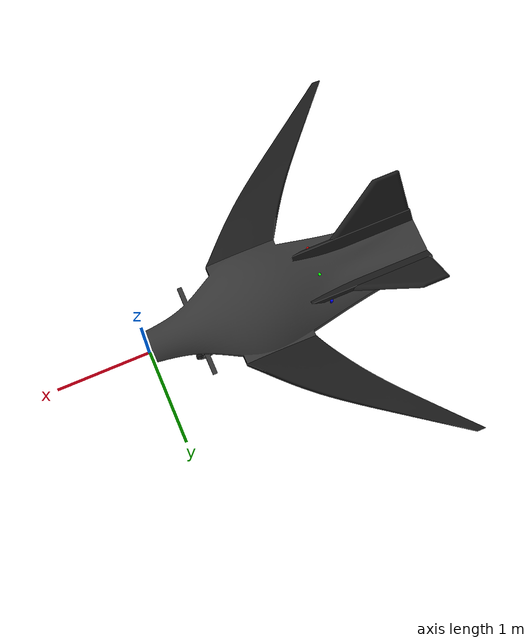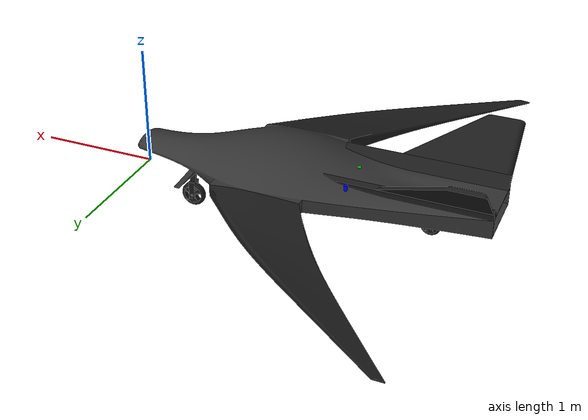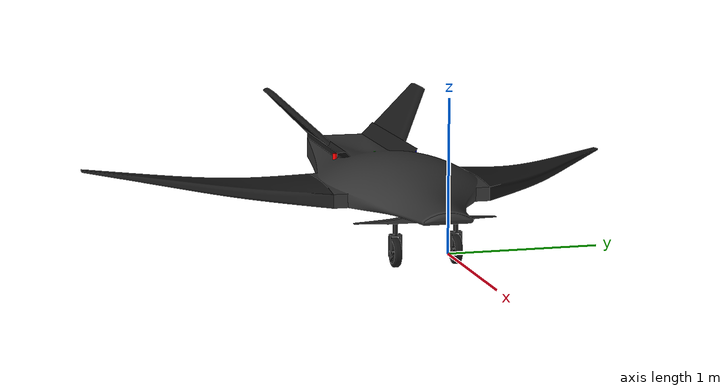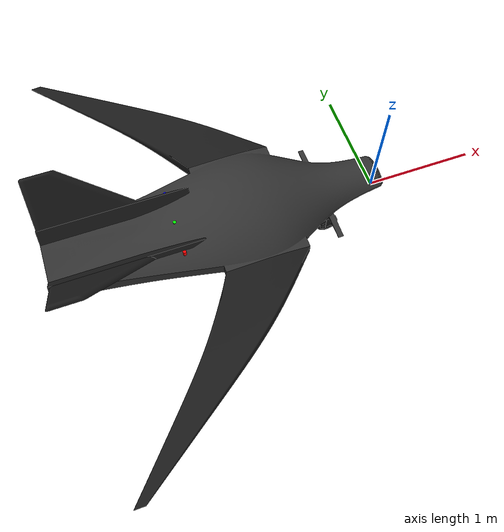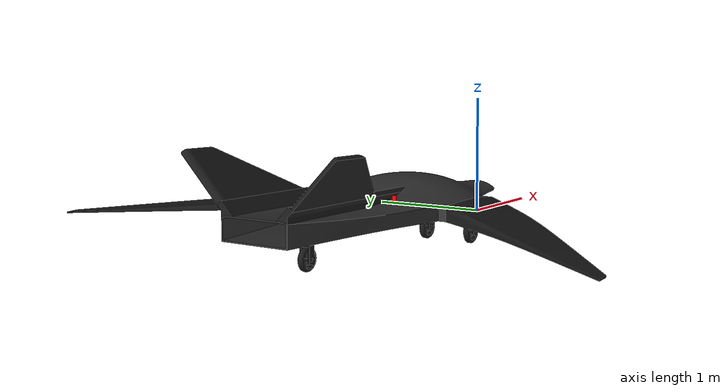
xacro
<?xml version="1.0"?>
<robot name="marid" xmlns:xacro="http://ros.org/wiki/xacro">

  <xacro:arg name="is_ignition" default="true"/>

  <!-- Include Gazebo parameters-->
  <xacro:include filename="$(find marid_description)/urdf/marid_new_gazebo.xacro"/>

  <!-- ROS2 Control Library-->
  <xacro:include filename="$(find marid_description)/urdf/marid_ros2_control.xacro"/>

  <!-- Joint origins at the desired rotation axis location; inertial origin = CoM in link frame (computed from joint origin) -->
  <xacro:property name="left_wing_inertial" value="-0.50031399 0.61004875 -0.02410637"/>
  <xacro:property name="right_wing_inertial" value="-0.50031399 -0.61004875 -0.02410637"/>
  <!-- Tail V-surfaces: inertial origin = CoM in tail link frame.-->
  <xacro:property name="tail_left_inertial" value="-0.12167064 0.13072223 0.12984906"/>
  <xacro:property name="tail_right_inertial" value="-0.12167064 -0.13072223 0.12984906"/>

  <link name="base_link_front">
    <inertial>
      <mass value="84.735"/>
      <origin xyz="-1.876 0 0.306" rpy="0 0 0"/>  <!-- COG already placed correctly -->
      <inertia ixx="6.643" ixy="0.013" ixz="-0.151" iyy="49.838" iyz="0.001" izz="55.184"/>
    </inertial>
    <visual>
      <origin xyz="0 0 0" rpy="0 0 0"/>
      <geometry>
        <mesh filename="package://marid_description/meshes_2/base_link_front.stl"/>
      </geometry>
      <material name="base_link_front_dark_grey">
        <color rgba="0.2 0.2 0.2 1.0"/>
      </material>
    </visual>
    <collision>
      <origin xyz="0 0 0" rpy="0 0 0"/>
      <geometry>
        <mesh filename="package://marid_description/meshes_2/base_link_front.stl"/>
      </geometry>
    </collision>
  </link>

  <!--Landing Gears-->
  <link name="left_front_wheel_arm">
    <inertial>
      <mass value="0.392"/>
      <origin xyz="-0.525 0.20786886 -0.00022077" rpy="0 0 0"/>
      <inertia ixx="0.002" ixy="0.0" ixz="0.0" iyy="0.002" iyz="0.0" izz="3.794e-4"/>
    </inertial>
    <visual>
      <origin xyz="0 0 0" rpy="0 0 0"/>
      <geometry>
        <mesh filename="package://marid_description/meshes_2/front_left_arm.stl"/>
      </geometry>
      <material name="arm_black">
        <color rgba="0.1 0.1 0.1 1.0"/>
      </material>
    </visual>
    <collision>
      <origin xyz="0 0 0" rpy="0 0 0"/>
      <geometry>
        <mesh filename="package://marid_description/meshes_2/front_left_arm.stl"/>
      </geometry>
    </collision>
  </link>

  <joint name="left_arm_joint" type="fixed">
    <parent link="base_link_front"/>
    <child link="left_front_wheel_arm"/>
    <origin xyz="0 0 0" rpy="0 0 0"/>  <!-- Top of left arm from CAD (min dist), m; Z neg = below origin -->
  </joint>

  <link name="right_front_wheel_arm">
    <inertial>
      <mass value="0.392"/>
      <origin xyz="-0.525 -0.20786886 -0.00022077" rpy="0 0 0"/>
      <inertia ixx="0.002" ixy="0.0" ixz="0.0" iyy="0.002" iyz="0.0" izz="3.794e-4"/>
    </inertial>
    <visual>
      <origin xyz="0 0 0" rpy="0 0 0"/>
      <geometry>
        <mesh filename="package://marid_description/meshes_2/front_right_arm.stl"/>
      </geometry>
      <material name="arm_black">
        <color rgba="0.1 0.1 0.1 1.0"/>
      </material>
    </visual>
    <collision>
      <origin xyz="0 0 0" rpy="0 0 0"/>
      <geometry>
        <mesh filename="package://marid_description/meshes_2/front_right_arm.stl"/>
      </geometry>
    </collision>
  </link>

  <joint name="right_arm_joint" type="fixed">
    <parent link="base_link_front"/>
    <child link="right_front_wheel_arm"/>
    <origin xyz="0 0 0" rpy="0 0 0"/>  <!-- Top of right arm from CAD (min dist), m; Z neg = below origin -->
  </joint>

  <link name="left_front_wheel">
    <inertial>
      <mass value="0.934"/>
      <origin xyz="0 0 0" rpy="0 0 0"/>
      <inertia ixx="0.0036" ixy="0" ixz="0" iyy="0.007" iyz="0" izz="0.0036"/>
    </inertial>
    <visual>
      <origin xyz="0.525 -0.20786886 0.09000082" rpy="0 0 0"/>
      <geometry>
        <mesh filename="package://marid_description/meshes_2/front_left_tire.stl"/>
      </geometry>
      <material name="tire_black">
        <color rgba="0.1 0.1 0.1 1.0"/>
      </material>
    </visual>
    <collision>
      <origin xyz="0 0 0" rpy="1.5708 0 0"/>
      <geometry>
        <cylinder radius="0.089" length="0.05"/>
      </geometry>
    </collision>
  </link>

  <joint name="left_front_wheel_joint" type="continuous">
    <parent link="left_front_wheel_arm"/>
    <child link="left_front_wheel"/>
    <origin xyz="-0.525 0.20786886 -0.09000082" rpy="0 0 0"/>
    <axis xyz="0 1 0"/>  <!-- Wheel rotation around own axle (parallel to world Y) -->
    <dynamics damping="0.01" friction="0.0"/>
  </joint>

  <link name="right_front_wheel">
    <inertial>
      <mass value="0.934"/>
      <origin xyz="0 0 0" rpy="0 0 0"/>
      <inertia ixx="0.0036" ixy="0" ixz="0" iyy="0.007" iyz="0" izz="0.0036"/>
    </inertial>
    <visual>
      <origin xyz="0.525 0.20786886 0.09000082" rpy="0 0 0"/>
      <geometry>
        <mesh filename="package://marid_description/meshes_2/front_right_tire.stl"/>
      </geometry>
      <material name="tire_black">
        <color rgba="0.1 0.1 0.1 1.0"/>
      </material>
    </visual>
    <collision>
      <origin xyz="0 0 0" rpy="1.5708 0 0"/>
      <geometry>
        <cylinder radius="0.089" length="0.05"/>
      </geometry>
    </collision>
  </link>

  <joint name="right_front_wheel_joint" type="continuous">
    <parent link="right_front_wheel_arm"/>
    <child link="right_front_wheel"/>
    <origin xyz="-0.525 -0.20786886 -0.09000082" rpy="0 0 0"/>
    <axis xyz="0 1 0"/>  <!-- Wheel rotation around own axle (parallel to world Y) -->
    <dynamics damping="0.01" friction="0.0"/>
  </joint>

  <link name="rear_wheel_arm">
    <inertial>
      <mass value="0.362"/>
      <origin xyz="-2.47499035 0 0.05355912" rpy="0 0 0"/>
      <inertia ixx="0.001" ixy="0.0" ixz="-3.417e-7" iyy="0.001" iyz="0.0" izz="3.242e-4"/>
    </inertial>
    <visual>
      <origin xyz="0 0 0" rpy="0 0 0"/>
      <geometry>
        <mesh filename="package://marid_description/meshes_2/rear_arm.stl"/>
      </geometry>
      <material name="arm_black">
        <color rgba="0.1 0.1 0.1 1.0"/>
      </material>
    </visual>
    <collision>
      <origin xyz="0 0 0" rpy="0 0 0"/>
      <geometry>
        <mesh filename="package://marid_description/meshes_2/rear_arm.stl"/>
      </geometry>
    </collision>
  </link>

  <joint name="rear_arm_joint" type="fixed">
    <parent link="base_link_front"/>
    <child link="rear_wheel_arm"/>
    <origin xyz="0 0 0" rpy="0 0 0"/>  <!-- Rear arm -->
  </joint>

  <link name="rear_wheel">
    <inertial>
      <mass value="0.573"/>
      <origin xyz="0 0 0" rpy="0 0 0"/>
      <inertia ixx="0.0016" ixy="0" ixz="0" iyy="0.003" iyz="0" izz="0.0016"/>
    </inertial>
    <visual>
      <origin xyz="2.475 0 0.02500082" rpy="0 0 0"/>
      <geometry>
        <mesh filename="package://marid_description/meshes_2/rear_tire.stl"/>
      </geometry>
      <material name="tire_black">
        <color rgba="0.1 0.1 0.1 1.0"/>
      </material>
    </visual>
    <collision>
      <origin xyz="0 0 0" rpy="1.5708 0 0"/>
      <geometry>
        <cylinder radius="0.08" length="0.05"/>
      </geometry>
    </collision>
  </link>

  <joint name="rear_wheel_joint" type="continuous">
    <parent link="rear_wheel_arm"/>
    <child link="rear_wheel"/>
    <origin xyz="-2.475 0 -0.02500082" rpy="0 0 0"/>
    <axis xyz="0 1 0"/>  <!-- Wheel rotation around own axle (parallel to world Y) -->
    <dynamics damping="0.01" friction="0.0"/>
  </joint>

  <link name="main_tail">
    <inertial>
      <mass value="17.551"/>
      <origin xyz="-2.4135434 0 0.34612528" rpy="0 0 0"/>
      <inertia ixx="1.073" ixy="1.867e-6" ixz="-0.023" iyy="2.113" iyz="-2.847e-7" izz="3.168"/>
    </inertial>
    <visual>
      <origin xyz="0 0 0" rpy="0 0 0"/>
      <geometry>
        <mesh filename="package://marid_description/meshes_2/main_tail.stl"/>
      </geometry>
      <material name="main_tail_black">
        <color rgba="0.1 0.1 0.1 1.0"/>
      </material>
    </visual>
    <collision>
      <origin xyz="0 0 0" rpy="0 0 0"/>
      <geometry>
        <mesh filename="package://marid_description/meshes_2/main_tail.stl"/>
      </geometry>
    </collision>
  </link>

  <joint name="main_tail_joint" type="fixed">
    <parent link="base_link_front"/>
    <child link="main_tail"/>
    <origin xyz="0 0 0" rpy="0 0 0"/>
  </joint>

  <link name="left_wing">
    <inertial>
      <origin xyz="${left_wing_inertial}" rpy="0 0 0"/>
      <mass value="3.662"/>
      <inertia ixx="0.55" ixy="0.54" ixz="-0.022" iyy="0.662" iyz="0.021" izz="1.202"/>
    </inertial>
    <visual>
      <origin xyz="1.225 -0.5 -0.208" rpy="0 0 0"/>
      <geometry>
        <mesh filename="package://marid_description/meshes_2/left_wing.stl"/>
      </geometry>
      <material name="wing_black">
        <color rgba="0.1 0.1 0.1 1.0"/>
      </material>
    </visual>
    <collision>
      <origin xyz="1.225 -0.5 -0.208" rpy="0 0 0"/>
      <geometry>
        <mesh filename="package://marid_description/meshes_2/left_wing.stl"/>
      </geometry>
    </collision>
  </link>

  <joint name="left_wing_joint" type="revolute">
    <parent link="base_link_front"/>
    <child link="left_wing"/>
    <origin xyz="-1.225 0.5 0.208" rpy="0 0 0"/>
    <axis xyz="0 1 0"/>
    <dynamics damping="2.5" friction="10.0"/>  <!-- Lower friction; wing mass/inertia + aero carry the load -->
    <sensor name="left_wing_ft" type="force_torque">
      <update_rate>1</update_rate>
      <force_torque>
        <frame>child</frame>
        <measure_direction>child_to_parent</measure_direction>
      </force_torque>
      <topic>/marid/left_wing/wrench</topic>
    </sensor>
    <limit lower="-0.15" upper="0.15" effort="700.0" velocity="1.0"/>  <!-- ±30 degrees; servo-like torque limit -->
  </joint>

  <link name="right_wing">
    <inertial>
      <origin xyz="${right_wing_inertial}"  rpy="0 0 0"/>
      <mass value="3.662"/>
      <inertia ixx="0.55" ixy="-0.54" ixz="-0.022" iyy="0.662" iyz="-0.021" izz="1.202"/>
    </inertial>
    <visual>
      <origin xyz="1.225 0.5 -0.208" rpy="0 0 0"/>
      <geometry>
        <mesh filename="package://marid_description/meshes_2/right_wing.stl"/>
      </geometry>
      <material name="wing_black">
        <color rgba="0.1 0.1 0.1 1.0"/>
      </material>
    </visual>
    <collision>
      <origin xyz="1.225 0.5 -0.208" rpy="0 0 0"/>
      <geometry>
        <mesh filename="package://marid_description/meshes_2/right_wing.stl"/>
      </geometry>
    </collision>
  </link>

  <joint name="right_wing_joint" type="revolute">
    <parent link="base_link_front"/>
    <child link="right_wing"/>
    <origin xyz="-1.225 -0.5 0.208" rpy="0 0 0"/>
    <axis xyz="0 1 0"/>
    <dynamics damping="2.5" friction="10.0"/>  <!-- Lower friction; wing mass/inertia + aero carry the load -->
    <sensor name="right_wing_ft" type="force_torque">
      <update_rate>1</update_rate>
      <force_torque>
        <frame>child</frame>
        <measure_direction>child_to_parent</measure_direction>
      </force_torque>
      <topic>/marid/right_wing/wrench</topic>
    </sensor>
    <limit lower="-0.15" upper="0.15" effort="700.0" velocity="1.0"/>  <!-- ±30 degrees; servo-like torque limit -->
  </joint>

  <link name="tail_left">
    <inertial>
      <origin xyz="${tail_left_inertial}" rpy="0 0 1.57079632679"/>
      <mass value="0.1664684"/>
      <inertia ixx="0.00053436" ixy="0.0" ixz="-0.0003467078" iyy="0.000704515" iyz="0.0" izz="0.0006567504"/>
    </inertial>
    <visual>
      <origin xyz="2.559906840 -0.28129418 -0.38425379" rpy="0 0 0"/>
      <geometry>
        <mesh filename="package://marid_description/meshes_2/tail_left.stl"/>
      </geometry>
      <material name="tail_wing_black">
        <color rgba="0.1 0.1 0.1 1.0"/>
      </material>
    </visual>
    <collision>
      <origin xyz="2.559906840 -0.28129418 -0.38425379" rpy="0 0 0"/>
      <geometry>
        <mesh filename="package://marid_description/meshes_2/tail_left.stl"/>
      </geometry>
    </collision>
  </link>

  <joint name="tail_left_joint" type="revolute">
    <parent link="main_tail"/>
    <child link="tail_left"/>
    <origin xyz="-2.559906840 0.28129418 0.38425379" rpy="0 0 0"/>
    <axis xyz="0 0.7071 0.7071"/>
    <dynamics damping="2.5" friction="10.0"/>  <!-- Lower friction; tail mass/inertia + aero carry the load -->
    <sensor name="left_tail_ft" type="force_torque">
      <update_rate>1</update_rate>
      <force_torque>
        <frame>child</frame>
        <measure_direction>child_to_parent</measure_direction>
      </force_torque>
      <topic>/marid/left_tail/wrench</topic>
    </sensor>
    <limit lower="-0.35" upper="0.35" effort="500.0" velocity="1.0"/>  <!-- ±20 degrees; servo-like torque limit -->
  </joint>

  <link name="tail_right">
    <inertial>
      <origin xyz="${tail_right_inertial}" rpy="0 0 1.57079632679"/>
      <mass value="0.1664684"/>
      <inertia ixx="0.00053436" ixy="0.0" ixz="0.0003467078" iyy="0.000704515" iyz="0.0" izz="0.0006567504"/>
    </inertial>
    <visual>
      <origin xyz="2.559906840 0.28129418 -0.38425379" rpy="0 0 0"/>
      <geometry>
        <mesh filename="package://marid_description/meshes_2/tail_right.stl"/>
      </geometry>
      <material name="tail_wing_black">
        <color rgba="0.1 0.1 0.1 1.0"/>
      </material>
    </visual>
    <collision>
      <origin xyz="2.559906840 0.28129418 -0.38425379" rpy="0 0 0"/>
      <geometry>
        <mesh filename="package://marid_description/meshes_2/tail_right.stl"/>
      </geometry>
    </collision>
  </link>

  <joint name="tail_right_joint" type="revolute">
    <parent link="main_tail"/>
    <child link="tail_right"/>
    <origin xyz="-2.559906840 -0.28129418 0.38425379" rpy="0 0 0"/>
    <axis xyz="0 0.7071 -0.7071"/>
    <dynamics damping="2.5" friction="10.0"/>  <!-- Lower friction; tail mass/inertia + aero carry the load -->
    <sensor name="right_tail_ft" type="force_torque">
      <update_rate>1</update_rate>
      <force_torque>
        <frame>child</frame>
        <measure_direction>child_to_parent</measure_direction>
      </force_torque>
      <topic>/marid/right_tail/wrench</topic>
    </sensor>
    <limit lower="-0.35" upper="0.35" effort="500.0" velocity="1.0"/>  <!-- ±20 degrees; servo-like torque limit -->
  </joint>

  <link name="imu_link">
    <inertial>
      <origin xyz="-0.00552433659106688 0.000168210391520346 0.000514000497342681" rpy="0 0 0" />
      <mass value="0.000528415362211671" />
      <inertia ixx="1.46176048428261E-08" ixy="1.40015117949421E-10" ixz="-1.99633872937403E-12"
               iyy="8.59662482954888E-09" iyz="7.52375112767959E-12"
               izz="2.30279421279312E-08" />
    </inertial>
    <visual>
        <origin xyz="-1.5 0 0.15" rpy="0 0 0"/>
        <geometry><cylinder length="0.01" radius="0.01"/></geometry>
    </visual>
    <collision>
        <origin xyz="-1.5 0 0.15" rpy="0 0 0"/>
        <geometry><cylinder length="0.01" radius="0.01"/></geometry>
    </collision>
  </link>

  <joint name="imu_joint" type="fixed">
    <origin xyz="0 0 0" rpy="0 0 0" />
    <parent link="base_link_front" />
    <child link="imu_link" />
  </joint>

  <link name="gps_link">
    <inertial>
      <mass value="0.01"/>
      <origin xyz="-1.5 0 0.18"/>
      <inertia ixx="1e-6" iyy="1e-6" izz="1e-6" ixy="0" ixz="0" iyz="0"/>
    </inertial>
    <visual>
      <origin xyz="-1.5 0 0.18" rpy="0 0 0"/>
      <geometry>
        <box size="0.02 0.02 0.01"/>
      </geometry>
      <material name="gps_green">
        <color rgba="0.0 1.0 0.0 1.0"/>
      </material>
      </visual>
  </link>

  <joint name="gps_joint" type="fixed">
    <parent link="base_link_front"/>
    <child link="gps_link"/>
    <origin xyz="0 0 0" rpy="0 0 0"/>  <!-- GPS at base origin (tune position for fuselage top) -->
  </joint>

  <!-- LIDAR Sensor Link -->
  <link name="lidar_link">
    <inertial>
      <mass value="0.1"/>  <!-- Typical LIDAR weight -->
      <origin xyz="-1.3 0 0.15"/>
      <inertia ixx="1e-5" iyy="1e-5" izz="1e-5" ixy="0" ixz="0" iyz="0"/>
    </inertial>
    <visual>
      <origin xyz="-1.3 0 0.15" rpy="0 0 0"/>
      <geometry>
        <cylinder length="0.05" radius="0.03"/>  <!-- Small cylinder to represent LIDAR -->
      </geometry>
      <material name="lidar_red">
        <color rgba="1.0 0.0 0.0 1.0"/>
      </material>
    </visual>
    <collision>
      <origin xyz="-1.3 0 0.15" rpy="0 0 0"/>
      <geometry>
        <cylinder length="0.05" radius="0.03"/>
      </geometry>
    </collision>
  </link>

  <joint name="lidar_joint" type="fixed">
    <parent link="base_link_front"/>
    <child link="lidar_link"/>
    <origin xyz="0 0 0.05" rpy="0 0 0"/>  <!-- LIDAR offset from base (Y right, Z up) -->
  </joint>

  <link name="pitot_link">
    <inertial>
      <mass value="0.005"/>
      <origin xyz="-1.1 0 0.15"/>
      <inertia ixx="1e-7" iyy="1e-7" izz="1e-7" ixy="0" ixz="0" iyz="0"/>
    </inertial>
  </link>

  <joint name="pitot_joint" type="fixed">
    <parent link="base_link_front"/>
    <child link="pitot_link"/>
    <origin xyz="0 0 0" rpy="0 0 0"/>  <!-- Pitot at base origin (tune position for nose airflow) -->
  </joint>

  <!-- 5-hole probe lateral (body-y): sensor x-axis rotated to align with body +y -->
  <link name="airspeed_y_link">
    <inertial>
      <mass value="0.001"/>
      <origin xyz="-1.1 0 0.15"/>
      <inertia ixx="1e-7" iyy="1e-7" izz="1e-7" ixy="0" ixz="0" iyz="0"/>
    </inertial>
  </link>

  <joint name="airspeed_y_joint" type="fixed">
    <parent link="base_link_front"/>
    <child link="airspeed_y_link"/>
    <origin xyz="0 0 0" rpy="0 0 1.5708"/>
  </joint>

  <!-- 5-hole probe vertical (body-z): sensor x-axis rotated to align with body +z -->
  <link name="airspeed_z_link">
    <inertial>
      <mass value="0.001"/>
      <origin xyz="-1.1 0 0.15"/>
      <inertia ixx="1e-7" iyy="1e-7" izz="1e-7" ixy="0" ixz="0" iyz="0"/>
    </inertial>
  </link>

  <joint name="airspeed_z_joint" type="fixed">
    <parent link="base_link_front"/>
    <child link="airspeed_z_link"/>
    <origin xyz="0 0 0" rpy="0 -1.5708 0"/>
  </joint>

  <link name="baro_link">
    <inertial>
      <mass value="0.001"/>
      <origin xyz="-1 0 0.15"/>
      <inertia ixx="1e-6" iyy="1e-6" izz="1e-6" ixy="0" ixz="0" iyz="0"/>
    </inertial>
  </link>

  <joint name="baro_joint" type="fixed">
    <parent link="base_link_front"/>
    <child link="baro_link"/>
    <origin xyz="0 0 0" rpy="0 0 0"/>
  </joint>

  <link name="thruster_L">
    <inertial>
      <origin xyz="0 0 0" rpy="0 0 0"/>
      <mass value="0.05"/>
      <inertia ixx="1e-5" ixy="0" ixz="0" iyy="1e-5" iyz="0" izz="1e-5"/>
    </inertial>
    <!-- NO COLLISION — spinning collision geometry causes ODE AABB overflow at high RPM -->
    <visual name="thruster_L_visual">
      <origin xyz="0 0 0" rpy="0 0 0"/>
      <geometry><cylinder length="0.1" radius="0.015"/></geometry>
      <material name="red_thruster">
        <color rgba="1.0 0.0 0.0 1.0"/>
      </material>
    </visual>
  </link>

  <link name="thruster_R">
    <inertial>
      <origin xyz="0 0 0" rpy="0 0 0"/>
      <mass value="0.05"/>
      <inertia ixx="1e-5" ixy="0" ixz="0" iyy="1e-5" iyz="0" izz="1e-5"/>
    </inertial>
    <!-- NO COLLISION — spinning collision geometry causes ODE AABB overflow at high RPM -->
    <visual name="thruster_R_visual">
      <origin xyz="0 0 0" rpy="0 0 0"/>
      <geometry><cylinder length="0.1" radius="0.015"/></geometry>
      <material name="blue_thruster">
        <color rgba="0.0 0.0 1.0 1.0"/>
      </material>
    </visual>
  </link>

  <joint name="thruster_L_joint" type="continuous">
    <parent link="base_link_front"/>
    <child  link="thruster_L"/>
    <origin xyz="-1.876 -0.3 0.306" rpy="0 0 0"/>
    <axis xyz="1 0 0"/>
    <!-- Continuous joints don't have limits - unlimited rotation for propellers -->
    <dynamics damping="0.0" friction="0.0"/>  <!-- Zero damping to allow full reaction torque visibility -->
  </joint>

  <joint name="thruster_R_joint" type="continuous">
    <parent link="base_link_front"/>
    <child  link="thruster_R"/>
    <origin xyz="-1.876 0.3 0.306" rpy="0 0 0"/>
    <axis xyz="1 0 0"/>
    <!-- Continuous joints don't have limits - unlimited rotation for propellers -->
    <dynamics damping="0.0" friction="0.0"/>  <!-- Zero damping to allow full reaction torque visibility -->
  </joint>

  <!-- Center Thruster (for single-thruster testing) -->
  <link name="thruster_center">
    <inertial>
      <origin xyz="0 0 0" rpy="0 0 0"/>  <!-- No rotation in inertial frame - force application should align with joint axis -->
      <mass value="0.05"/>  <!-- Increased from 0.001 to 0.05 for better stability -->
      <inertia ixx="5e-4" ixy="0" ixz="0" iyy="5e-4" iyz="0" izz="5e-4"/>  <!-- Scaled with mass -->
    </inertial>
    <visual>
      <origin xyz="0 0 0" rpy="0 0 0"/>  <!-- Removed rotation to test if visual frame affects force direction -->
      <geometry><cylinder length="0.1" radius="0.015"/></geometry>
      <material name="green_thruster">
        <color rgba="0.0 1.0 0.0 1.0"/>
      </material>
    </visual>
    <!-- NO COLLISION - prevents overlap issues, thruster is visual-only and force application doesn't need collision -->
  </link>

  <joint name="thruster_center_joint" type="continuous">
    <parent link="base_link_front"/>
    <child link="thruster_center"/>
    <origin xyz="-1.876 0 0.306" rpy="0 0 0"/>  <!-- Back at COM - no moments to prevent initial roll -->
    <axis xyz="1 0 0"/>  <!-- X-axis: positive cmd_thrust = force +X (forward) -->
    <!-- Continuous joints don't have limits - unlimited rotation for propellers -->
    <dynamics damping="0.0" friction="0.0"/>  <!-- Zero damping and friction for reaction torque visibility -->
  </joint>

    <!-- Camera link for perception / ML -->
  <link name="camera_link">
    <inertial>
      <mass value="0.02"/>
      <origin xyz="-1 0 1"/>
      <inertia ixx="1e-6" iyy="1e-6" izz="1e-6" ixy="0" ixz="0" iyz="0"/>
    </inertial>
    <visual>
      <origin xyz="-0.025 0 .25" rpy="0 0 0"/>
      <geometry>
        <box size="0.02 0.06 0.02"/>
      </geometry>
      <material name="camera_gray">
        <color rgba="0.3 0.3 0.3 1.0"/>
      </material>
    </visual>
    <collision>
      <origin xyz="-1 0 1" rpy="0 0 0"/>
      <geometry>
        <box size="0.02 0.06 0.02"/>
      </geometry>
    </collision>
  </link>

  <joint name="camera_joint" type="fixed">
    <parent link="base_link_front"/>
    <child link="camera_link"/>
    <!-- Nose mount, forward-looking -->
    <!-- Rotate camera 15 degrees around Y axis (pitch up, CCW in URDF rpy) -->
    <origin xyz="0 0 0" rpy="0 0 0"/>
  </joint>

  <!-- Optical Flow Camera - belly mount, downward facing -->
  <link name="optical_flow_link">
    <inertial>
      <mass value="0.01"/>
      <origin xyz="0 0 0"/>
      <inertia ixx="1e-6" iyy="1e-6" izz="1e-6" ixy="0" ixz="0" iyz="0"/>
    </inertial>
    <visual>
      <origin xyz="0 0 0" rpy="0 0 0"/>
      <geometry><box size="0.02 0.02 0.01"/></geometry>
      <material name="of_gray"><color rgba="0.5 0.5 0.5 1.0"/></material>
    </visual>
    <collision>
      <origin xyz="0 0 0" rpy="0 0 0"/>
      <geometry><box size="0.02 0.02 0.01"/></geometry>
    </collision>
  </link>

  <!-- rpy="0 1.5708 0": pitch +90° rotates sensor +X to body -Z (downward) -->
  <joint name="optical_flow_joint" type="fixed">
    <parent link="base_link_front"/>
    <child link="optical_flow_link"/>
    <origin xyz="-0.5 0 0.1" rpy="0 1.5708 0"/>
  </joint>

  <!-- Sonar Rangefinder - belly mount, downward facing -->
  <link name="sonar_link">
    <inertial>
      <mass value="0.005"/>
      <origin xyz="0 0 0"/>
      <inertia ixx="1e-7" iyy="1e-7" izz="1e-7" ixy="0" ixz="0" iyz="0"/>
    </inertial>
  </link>

  <joint name="sonar_joint" type="fixed">
    <parent link="base_link_front"/>
    <child link="sonar_link"/>
    <origin xyz="-0.5 0 0.1" rpy="0 1.5708 0"/>
  </joint>

</robot>
